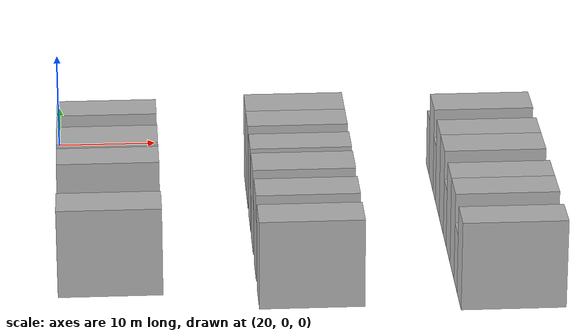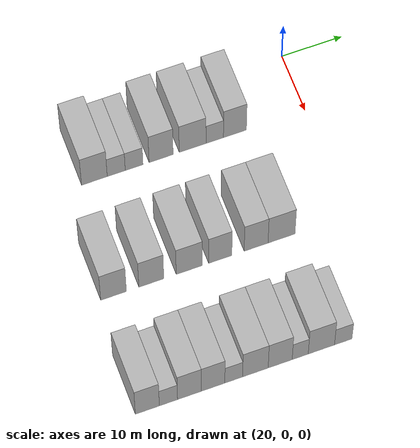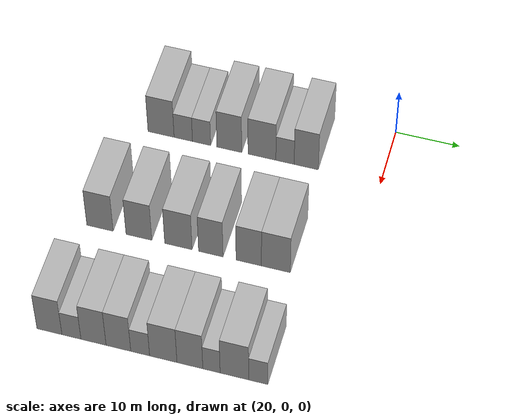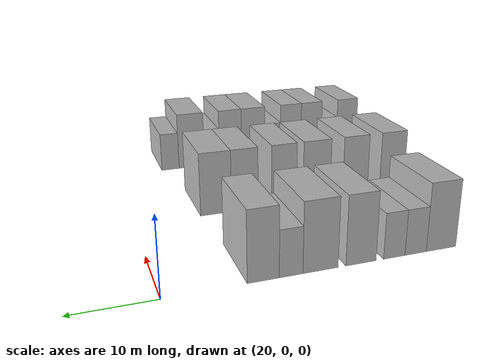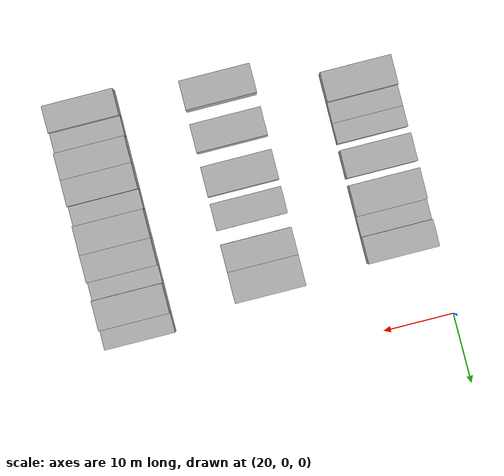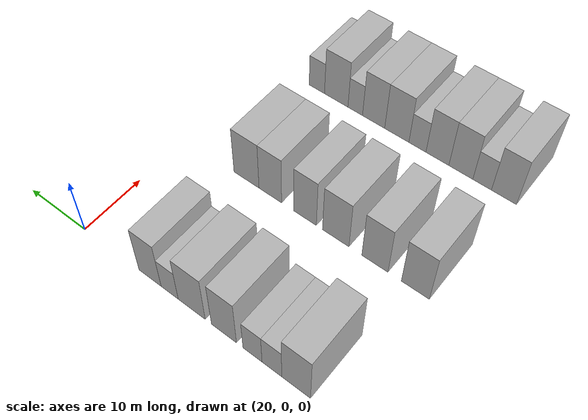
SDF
<sdf version="1.6">
 <world name="default">
  <model name="building_56">
   <static>1</static>
   <pose>25.0000 -34.6225 0 0.000000 0.000000 0.000000</pose>
   <link name="link">
    <pose>0 0 4.50 0 0 0</pose>
    <collision name="collision"><geometry><box><size>10.0000 4.1774 9.0000</size></box></geometry></collision>
    <visual name="visual">
     <cast_shadows>0</cast_shadows>
     <geometry><box><size>10.0000 4.1774 9.0000</size></box></geometry>
     <material>
      <script>
       <uri>model://HANNAS_wall/materials/scripts</uri>
       <uri>model://HANNAS_wall/materials/textures</uri>
       <name>vrc/HANNAS_wall</name>
      </script>
     </material>
    </visual>
   </link>
  </model>
  <model name="building_57">
   <static>1</static>
   <pose>25.0000 -31.0649 0 0.000000 0.000000 0.000000</pose>
   <link name="link">
    <pose>0 0 3.00 0 0 0</pose>
    <collision name="collision"><geometry><box><size>10.0000 2.9377 6.0000</size></box></geometry></collision>
    <visual name="visual">
     <cast_shadows>0</cast_shadows>
     <geometry><box><size>10.0000 2.9377 6.0000</size></box></geometry>
     <material>
      <script>
       <uri>model://HANNAS_wall/materials/scripts</uri>
       <uri>model://HANNAS_wall/materials/textures</uri>
       <name>vrc/HANNAS_wall</name>
      </script>
     </material>
    </visual>
   </link>
  </model>
  <model name="building_58">
   <static>1</static>
   <pose>25.0000 -28.1471 0 0.000000 0.000000 0.000000</pose>
   <link name="link">
    <pose>0 0 3.00 0 0 0</pose>
    <collision name="collision"><geometry><box><size>10.0000 2.8979 6.0000</size></box></geometry></collision>
    <visual name="visual">
     <cast_shadows>0</cast_shadows>
     <geometry><box><size>10.0000 2.8979 6.0000</size></box></geometry>
     <material>
      <script>
       <uri>model://HANNAS_wall/materials/scripts</uri>
       <uri>model://HANNAS_wall/materials/textures</uri>
       <name>vrc/HANNAS_wall</name>
      </script>
     </material>
    </visual>
   </link>
  </model>
  <model name="building_59">
   <static>1</static>
   <pose>25.0000 -23.7304 0 0.000000 0.000000 0.000000</pose>
   <link name="link">
    <pose>0 0 4.50 0 0 0</pose>
    <collision name="collision"><geometry><box><size>10.0000 3.9353 9.0000</size></box></geometry></collision>
    <visual name="visual">
     <cast_shadows>0</cast_shadows>
     <geometry><box><size>10.0000 3.9353 9.0000</size></box></geometry>
     <material>
      <script>
       <uri>model://HANNAS_wall/materials/scripts</uri>
       <uri>model://HANNAS_wall/materials/textures</uri>
       <name>vrc/HANNAS_wall</name>
      </script>
     </material>
    </visual>
   </link>
  </model>
  <model name="building_60">
   <static>1</static>
   <pose>25.0000 -18.5632 0 0.000000 0.000000 0.000000</pose>
   <link name="link">
    <pose>0 0 4.50 0 0 0</pose>
    <collision name="collision"><geometry><box><size>10.0000 4.3992 9.0000</size></box></geometry></collision>
    <visual name="visual">
     <cast_shadows>0</cast_shadows>
     <geometry><box><size>10.0000 4.3992 9.0000</size></box></geometry>
     <material>
      <script>
       <uri>model://HANNAS_wall/materials/scripts</uri>
       <uri>model://HANNAS_wall/materials/textures</uri>
       <name>vrc/HANNAS_wall</name>
      </script>
     </material>
    </visual>
   </link>
  </model>
  <model name="building_61">
   <static>1</static>
   <pose>25.0000 -14.9277 0 0.000000 0.000000 0.000000</pose>
   <link name="link">
    <pose>0 0 3.00 0 0 0</pose>
    <collision name="collision"><geometry><box><size>10.0000 2.8717 6.0000</size></box></geometry></collision>
    <visual name="visual">
     <cast_shadows>0</cast_shadows>
     <geometry><box><size>10.0000 2.8717 6.0000</size></box></geometry>
     <material>
      <script>
       <uri>model://HANNAS_wall/materials/scripts</uri>
       <uri>model://HANNAS_wall/materials/textures</uri>
       <name>vrc/HANNAS_wall</name>
      </script>
     </material>
    </visual>
   </link>
  </model>
  <model name="building_62">
   <static>1</static>
   <pose>25.0000 -11.5971 0 0.000000 0.000000 0.000000</pose>
   <link name="link">
    <pose>0 0 4.50 0 0 0</pose>
    <collision name="collision"><geometry><box><size>10.0000 3.7895 9.0000</size></box></geometry></collision>
    <visual name="visual">
     <cast_shadows>0</cast_shadows>
     <geometry><box><size>10.0000 3.7895 9.0000</size></box></geometry>
     <material>
      <script>
       <uri>model://HANNAS_wall/materials/scripts</uri>
       <uri>model://HANNAS_wall/materials/textures</uri>
       <name>vrc/HANNAS_wall</name>
      </script>
     </material>
    </visual>
   </link>
  </model>
  <model name="building_171">
   <static>1</static>
   <pose>44.0000 -38.2819 0 0.000000 0.000000 0.000000</pose>
   <link name="link">
    <pose>0 0 4.50 0 0 0</pose>
    <collision name="collision"><geometry><box><size>10.0000 4.1137 9.0000</size></box></geometry></collision>
    <visual name="visual">
     <cast_shadows>0</cast_shadows>
     <geometry><box><size>10.0000 4.1137 9.0000</size></box></geometry>
     <material>
      <script>
       <uri>model://HANNAS_wall/materials/scripts</uri>
       <uri>model://HANNAS_wall/materials/textures</uri>
       <name>vrc/HANNAS_wall</name>
      </script>
     </material>
    </visual>
   </link>
  </model>
  <model name="building_172">
   <static>1</static>
   <pose>44.0000 -32.2235 0 0.000000 0.000000 0.000000</pose>
   <link name="link">
    <pose>0 0 4.50 0 0 0</pose>
    <collision name="collision"><geometry><box><size>10.0000 4.0030 9.0000</size></box></geometry></collision>
    <visual name="visual">
     <cast_shadows>0</cast_shadows>
     <geometry><box><size>10.0000 4.0030 9.0000</size></box></geometry>
     <material>
      <script>
       <uri>model://HANNAS_wall/materials/scripts</uri>
       <uri>model://HANNAS_wall/materials/textures</uri>
       <name>vrc/HANNAS_wall</name>
      </script>
     </material>
    </visual>
   </link>
  </model>
  <model name="building_173">
   <static>1</static>
   <pose>44.0000 -26.1094 0 0.000000 0.000000 0.000000</pose>
   <link name="link">
    <pose>0 0 4.50 0 0 0</pose>
    <collision name="collision"><geometry><box><size>10.0000 4.2254 9.0000</size></box></geometry></collision>
    <visual name="visual">
     <cast_shadows>0</cast_shadows>
     <geometry><box><size>10.0000 4.2254 9.0000</size></box></geometry>
     <material>
      <script>
       <uri>model://HANNAS_wall/materials/scripts</uri>
       <uri>model://HANNAS_wall/materials/textures</uri>
       <name>vrc/HANNAS_wall</name>
      </script>
     </material>
    </visual>
   </link>
  </model>
  <model name="building_174">
   <static>1</static>
   <pose>44.0000 -21.1174 0 0.000000 0.000000 0.000000</pose>
   <link name="link">
    <pose>0 0 4.50 0 0 0</pose>
    <collision name="collision"><geometry><box><size>10.0000 3.7585 9.0000</size></box></geometry></collision>
    <visual name="visual">
     <cast_shadows>0</cast_shadows>
     <geometry><box><size>10.0000 3.7585 9.0000</size></box></geometry>
     <material>
      <script>
       <uri>model://HANNAS_wall/materials/scripts</uri>
       <uri>model://HANNAS_wall/materials/textures</uri>
       <name>vrc/HANNAS_wall</name>
      </script>
     </material>
    </visual>
   </link>
  </model>
  <model name="building_175">
   <static>1</static>
   <pose>44.0000 -15.3020 0 0.000000 0.000000 0.000000</pose>
   <link name="link">
    <pose>0 0 4.50 0 0 0</pose>
    <collision name="collision"><geometry><box><size>10.0000 3.8724 9.0000</size></box></geometry></collision>
    <visual name="visual">
     <cast_shadows>0</cast_shadows>
     <geometry><box><size>10.0000 3.8724 9.0000</size></box></geometry>
     <material>
      <script>
       <uri>model://HANNAS_wall/materials/scripts</uri>
       <uri>model://HANNAS_wall/materials/textures</uri>
       <name>vrc/HANNAS_wall</name>
      </script>
     </material>
    </visual>
   </link>
  </model>
  <model name="building_176">
   <static>1</static>
   <pose>44.0000 -11.1709 0 0.000000 0.000000 0.000000</pose>
   <link name="link">
    <pose>0 0 4.50 0 0 0</pose>
    <collision name="collision"><geometry><box><size>10.0000 4.3899 9.0000</size></box></geometry></collision>
    <visual name="visual">
     <cast_shadows>0</cast_shadows>
     <geometry><box><size>10.0000 4.3899 9.0000</size></box></geometry>
     <material>
      <script>
       <uri>model://HANNAS_wall/materials/scripts</uri>
       <uri>model://HANNAS_wall/materials/textures</uri>
       <name>vrc/HANNAS_wall</name>
      </script>
     </material>
    </visual>
   </link>
  </model>
  <model name="building_296">
   <static>1</static>
   <pose>63.0000 -39.7483 0 0.000000 0.000000 0.000000</pose>
   <link name="link">
    <pose>0 0 4.50 0 0 0</pose>
    <collision name="collision"><geometry><box><size>10.0000 3.7897 9.0000</size></box></geometry></collision>
    <visual name="visual">
     <cast_shadows>0</cast_shadows>
     <geometry><box><size>10.0000 3.7897 9.0000</size></box></geometry>
     <material>
      <script>
       <uri>model://HANNAS_wall/materials/scripts</uri>
       <uri>model://HANNAS_wall/materials/textures</uri>
       <name>vrc/HANNAS_wall</name>
      </script>
     </material>
    </visual>
   </link>
  </model>
  <model name="building_297">
   <static>1</static>
   <pose>63.0000 -36.4173 0 0.000000 0.000000 0.000000</pose>
   <link name="link">
    <pose>0 0 3.00 0 0 0</pose>
    <collision name="collision"><geometry><box><size>10.0000 2.8723 6.0000</size></box></geometry></collision>
    <visual name="visual">
     <cast_shadows>0</cast_shadows>
     <geometry><box><size>10.0000 2.8723 6.0000</size></box></geometry>
     <material>
      <script>
       <uri>model://HANNAS_wall/materials/scripts</uri>
       <uri>model://HANNAS_wall/materials/textures</uri>
       <name>vrc/HANNAS_wall</name>
      </script>
     </material>
    </visual>
   </link>
  </model>
  <model name="building_298">
   <static>1</static>
   <pose>63.0000 -33.0860 0 0.000000 0.000000 0.000000</pose>
   <link name="link">
    <pose>0 0 4.50 0 0 0</pose>
    <collision name="collision"><geometry><box><size>10.0000 3.7903 9.0000</size></box></geometry></collision>
    <visual name="visual">
     <cast_shadows>0</cast_shadows>
     <geometry><box><size>10.0000 3.7903 9.0000</size></box></geometry>
     <material>
      <script>
       <uri>model://HANNAS_wall/materials/scripts</uri>
       <uri>model://HANNAS_wall/materials/textures</uri>
       <name>vrc/HANNAS_wall</name>
      </script>
     </material>
    </visual>
   </link>
  </model>
  <model name="building_299">
   <static>1</static>
   <pose>63.0000 -29.3379 0 0.000000 0.000000 0.000000</pose>
   <link name="link">
    <pose>0 0 4.50 0 0 0</pose>
    <collision name="collision"><geometry><box><size>10.0000 3.7058 9.0000</size></box></geometry></collision>
    <visual name="visual">
     <cast_shadows>0</cast_shadows>
     <geometry><box><size>10.0000 3.7058 9.0000</size></box></geometry>
     <material>
      <script>
       <uri>model://HANNAS_wall/materials/scripts</uri>
       <uri>model://HANNAS_wall/materials/textures</uri>
       <name>vrc/HANNAS_wall</name>
      </script>
     </material>
    </visual>
   </link>
  </model>
  <model name="building_300">
   <static>1</static>
   <pose>63.0000 -26.0770 0 0.000000 0.000000 0.000000</pose>
   <link name="link">
    <pose>0 0 3.00 0 0 0</pose>
    <collision name="collision"><geometry><box><size>10.0000 2.8160 6.0000</size></box></geometry></collision>
    <visual name="visual">
     <cast_shadows>0</cast_shadows>
     <geometry><box><size>10.0000 2.8160 6.0000</size></box></geometry>
     <material>
      <script>
       <uri>model://HANNAS_wall/materials/scripts</uri>
       <uri>model://HANNAS_wall/materials/textures</uri>
       <name>vrc/HANNAS_wall</name>
      </script>
     </material>
    </visual>
   </link>
  </model>
  <model name="building_301">
   <static>1</static>
   <pose>63.0000 -22.6278 0 0.000000 0.000000 0.000000</pose>
   <link name="link">
    <pose>0 0 4.50 0 0 0</pose>
    <collision name="collision"><geometry><box><size>10.0000 4.0823 9.0000</size></box></geometry></collision>
    <visual name="visual">
     <cast_shadows>0</cast_shadows>
     <geometry><box><size>10.0000 4.0823 9.0000</size></box></geometry>
     <material>
      <script>
       <uri>model://HANNAS_wall/materials/scripts</uri>
       <uri>model://HANNAS_wall/materials/textures</uri>
       <name>vrc/HANNAS_wall</name>
      </script>
     </material>
    </visual>
   </link>
  </model>
  <model name="building_302">
   <static>1</static>
   <pose>63.0000 -18.6668 0 0.000000 0.000000 0.000000</pose>
   <link name="link">
    <pose>0 0 4.50 0 0 0</pose>
    <collision name="collision"><geometry><box><size>10.0000 3.8397 9.0000</size></box></geometry></collision>
    <visual name="visual">
     <cast_shadows>0</cast_shadows>
     <geometry><box><size>10.0000 3.8397 9.0000</size></box></geometry>
     <material>
      <script>
       <uri>model://HANNAS_wall/materials/scripts</uri>
       <uri>model://HANNAS_wall/materials/textures</uri>
       <name>vrc/HANNAS_wall</name>
      </script>
     </material>
    </visual>
   </link>
  </model>
  <model name="building_303">
   <static>1</static>
   <pose>63.0000 -15.4652 0 0.000000 0.000000 0.000000</pose>
   <link name="link">
    <pose>0 0 3.00 0 0 0</pose>
    <collision name="collision"><geometry><box><size>10.0000 2.5637 6.0000</size></box></geometry></collision>
    <visual name="visual">
     <cast_shadows>0</cast_shadows>
     <geometry><box><size>10.0000 2.5637 6.0000</size></box></geometry>
     <material>
      <script>
       <uri>model://HANNAS_wall/materials/scripts</uri>
       <uri>model://HANNAS_wall/materials/textures</uri>
       <name>vrc/HANNAS_wall</name>
      </script>
     </material>
    </visual>
   </link>
  </model>
  <model name="building_304">
   <static>1</static>
   <pose>63.0000 -12.0735 0 0.000000 0.000000 0.000000</pose>
   <link name="link">
    <pose>0 0 4.50 0 0 0</pose>
    <collision name="collision"><geometry><box><size>10.0000 4.2197 9.0000</size></box></geometry></collision>
    <visual name="visual">
     <cast_shadows>0</cast_shadows>
     <geometry><box><size>10.0000 4.2197 9.0000</size></box></geometry>
     <material>
      <script>
       <uri>model://HANNAS_wall/materials/scripts</uri>
       <uri>model://HANNAS_wall/materials/textures</uri>
       <name>vrc/HANNAS_wall</name>
      </script>
     </material>
    </visual>
   </link>
  </model>
  <model name="building_305">
   <static>1</static>
   <pose>63.0000 -8.5590 0 0.000000 0.000000 0.000000</pose>
   <link name="link">
    <pose>0 0 3.00 0 0 0</pose>
    <collision name="collision"><geometry><box><size>10.0000 2.8092 6.0000</size></box></geometry></collision>
    <visual name="visual">
     <cast_shadows>0</cast_shadows>
     <geometry><box><size>10.0000 2.8092 6.0000</size></box></geometry>
     <material>
      <script>
       <uri>model://HANNAS_wall/materials/scripts</uri>
       <uri>model://HANNAS_wall/materials/textures</uri>
       <name>vrc/HANNAS_wall</name>
      </script>
     </material>
    </visual>
   </link>
  </model>
 </world>
</sdf>
